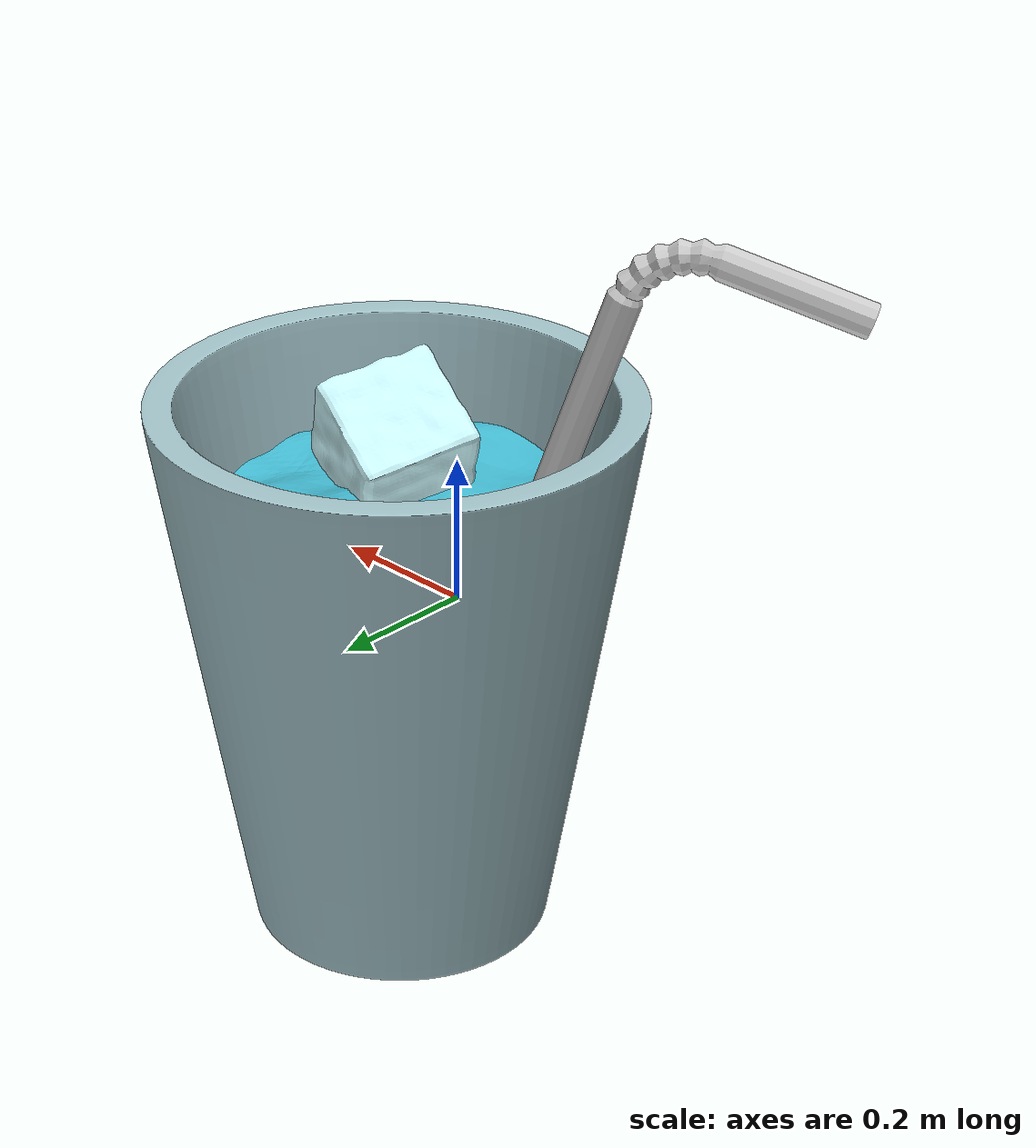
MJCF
<mujoco model="glass_of_water">
  <asset>
  <texture file="visual/ceramic.png" name="tex-glass_of_water" type="2d" />
  <material name="glass_of_water" reflectance="0.5" texrepeat="1 1" texture="tex-glass_of_water" texuniform="false" />
  <mesh file="visual/model_normalized_0.obj" name="model_normalized_0_vis" scale="1.0 1.0 1.0" /><mesh file="visual/model_normalized_1.obj" name="model_normalized_1_vis" scale="1.0 1.0 1.0" /><mesh file="visual/model_normalized_2.obj" name="model_normalized_2_vis" scale="1.0 1.0 1.0" /><mesh file="visual/model_normalized_3.obj" name="model_normalized_3_vis" scale="1.0 1.0 1.0" /><mesh file="visual/model_normalized_4.obj" name="model_normalized_4_vis" scale="1.0 1.0 1.0" /><mesh file="collision/model_normalized_collision_22.obj" name="model_normalized_collision_22._coll" scale="1.0 1.0 1.0" /><mesh file="collision/model_normalized_collision_23.obj" name="model_normalized_collision_23._coll" scale="1.0 1.0 1.0" /><mesh file="collision/model_normalized_collision_21.obj" name="model_normalized_collision_21._coll" scale="1.0 1.0 1.0" /><mesh file="collision/model_normalized_collision_20.obj" name="model_normalized_collision_20._coll" scale="1.0 1.0 1.0" /><mesh file="collision/model_normalized_collision_24.obj" name="model_normalized_collision_24._coll" scale="1.0 1.0 1.0" /><mesh file="collision/model_normalized_collision_30.obj" name="model_normalized_collision_30._coll" scale="1.0 1.0 1.0" /><mesh file="collision/model_normalized_collision_18.obj" name="model_normalized_collision_18._coll" scale="1.0 1.0 1.0" /><mesh file="collision/model_normalized_collision_19.obj" name="model_normalized_collision_19._coll" scale="1.0 1.0 1.0" /><mesh file="collision/model_normalized_collision_31.obj" name="model_normalized_collision_31._coll" scale="1.0 1.0 1.0" /><mesh file="collision/model_normalized_collision_25.obj" name="model_normalized_collision_25._coll" scale="1.0 1.0 1.0" /><mesh file="collision/model_normalized_collision_27.obj" name="model_normalized_collision_27._coll" scale="1.0 1.0 1.0" /><mesh file="collision/model_normalized_collision_26.obj" name="model_normalized_collision_26._coll" scale="1.0 1.0 1.0" /><mesh file="collision/model_normalized_collision_9.obj" name="model_normalized_collision_9._coll" scale="1.0 1.0 1.0" /><mesh file="collision/model_normalized_collision_8.obj" name="model_normalized_collision_8._coll" scale="1.0 1.0 1.0" /><mesh file="collision/model_normalized_collision_6.obj" name="model_normalized_collision_6._coll" scale="1.0 1.0 1.0" /><mesh file="collision/model_normalized_collision_7.obj" name="model_normalized_collision_7._coll" scale="1.0 1.0 1.0" /><mesh file="collision/model_normalized_collision_5.obj" name="model_normalized_collision_5._coll" scale="1.0 1.0 1.0" /><mesh file="collision/model_normalized_collision_4.obj" name="model_normalized_collision_4._coll" scale="1.0 1.0 1.0" /><mesh file="collision/model_normalized_collision_0.obj" name="model_normalized_collision_0._coll" scale="1.0 1.0 1.0" /><mesh file="collision/model_normalized_collision_1.obj" name="model_normalized_collision_1._coll" scale="1.0 1.0 1.0" /><mesh file="collision/model_normalized_collision_3.obj" name="model_normalized_collision_3._coll" scale="1.0 1.0 1.0" /><mesh file="collision/model_normalized_collision_2.obj" name="model_normalized_collision_2._coll" scale="1.0 1.0 1.0" /><mesh file="collision/model_normalized_collision_17.obj" name="model_normalized_collision_17._coll" scale="1.0 1.0 1.0" /><mesh file="collision/model_normalized_collision_16.obj" name="model_normalized_collision_16._coll" scale="1.0 1.0 1.0" /><mesh file="collision/model_normalized_collision_28.obj" name="model_normalized_collision_28._coll" scale="1.0 1.0 1.0" /><mesh file="collision/model_normalized_collision_14.obj" name="model_normalized_collision_14._coll" scale="1.0 1.0 1.0" /><mesh file="collision/model_normalized_collision_15.obj" name="model_normalized_collision_15._coll" scale="1.0 1.0 1.0" /><mesh file="collision/model_normalized_collision_29.obj" name="model_normalized_collision_29._coll" scale="1.0 1.0 1.0" /><mesh file="collision/model_normalized_collision_11.obj" name="model_normalized_collision_11._coll" scale="1.0 1.0 1.0" /><mesh file="collision/model_normalized_collision_10.obj" name="model_normalized_collision_10._coll" scale="1.0 1.0 1.0" /><mesh file="collision/model_normalized_collision_12.obj" name="model_normalized_collision_12._coll" scale="1.0 1.0 1.0" /><mesh file="collision/model_normalized_collision_13.obj" name="model_normalized_collision_13._coll" scale="1.0 1.0 1.0" /><material name="material_0" specular="0.4000000000000001" shininess="0.001" rgba="0.80000000 0.98039216 1.00000000 1.0" /><material name="material_1" specular="0.4000000000000001" shininess="0.001" rgba="0.62745098 0.83137255 0.90588235 1.0" /><material name="material_2" specular="0.4000000000000001" shininess="0.001" rgba="0.80000000 0.80000000 0.80000000 1.0" /><material name="material_3" specular="0.4000000000000001" shininess="0.001" rgba="0.25490196 0.71764706 0.80784314 1.0" /><material name="material_4" specular="0.4000000000000001" shininess="0.001" rgba="0.62745098 0.75686275 0.78039216 1.0" /></asset>
  <worldbody>
    <body>
      <body name="object">
      <geom solimp="0.998 0.998 0.001" solref="0.001 1" density="100" friction="0.95 0.3 0.1" type="mesh" mesh="model_normalized_0_vis" conaffinity="0" contype="0" group="1" material="material_4" /><geom solimp="0.998 0.998 0.001" solref="0.001 1" density="100" friction="0.95 0.3 0.1" type="mesh" mesh="model_normalized_1_vis" conaffinity="0" contype="0" group="1" material="material_3" /><geom solimp="0.998 0.998 0.001" solref="0.001 1" density="100" friction="0.95 0.3 0.1" type="mesh" mesh="model_normalized_2_vis" conaffinity="0" contype="0" group="1" material="material_2" /><geom solimp="0.998 0.998 0.001" solref="0.001 1" density="100" friction="0.95 0.3 0.1" type="mesh" mesh="model_normalized_3_vis" conaffinity="0" contype="0" group="1" material="material_1" /><geom solimp="0.998 0.998 0.001" solref="0.001 1" density="100" friction="0.95 0.3 0.1" type="mesh" mesh="model_normalized_4_vis" conaffinity="0" contype="0" group="1" material="material_0" /><geom solimp="0.998 0.998 0.001" solref="0.001 1" density="100" friction="0.95 0.3 0.1" type="mesh" mesh="model_normalized_collision_22._coll" group="0" rgba="0.8 0.8 0.8 0.0" /><geom solimp="0.998 0.998 0.001" solref="0.001 1" density="100" friction="0.95 0.3 0.1" type="mesh" mesh="model_normalized_collision_23._coll" group="0" rgba="0.8 0.8 0.8 0.0" /><geom solimp="0.998 0.998 0.001" solref="0.001 1" density="100" friction="0.95 0.3 0.1" type="mesh" mesh="model_normalized_collision_21._coll" group="0" rgba="0.8 0.8 0.8 0.0" /><geom solimp="0.998 0.998 0.001" solref="0.001 1" density="100" friction="0.95 0.3 0.1" type="mesh" mesh="model_normalized_collision_20._coll" group="0" rgba="0.8 0.8 0.8 0.0" /><geom solimp="0.998 0.998 0.001" solref="0.001 1" density="100" friction="0.95 0.3 0.1" type="mesh" mesh="model_normalized_collision_24._coll" group="0" rgba="0.8 0.8 0.8 0.0" /><geom solimp="0.998 0.998 0.001" solref="0.001 1" density="100" friction="0.95 0.3 0.1" type="mesh" mesh="model_normalized_collision_30._coll" group="0" rgba="0.8 0.8 0.8 0.0" /><geom solimp="0.998 0.998 0.001" solref="0.001 1" density="100" friction="0.95 0.3 0.1" type="mesh" mesh="model_normalized_collision_18._coll" group="0" rgba="0.8 0.8 0.8 0.0" /><geom solimp="0.998 0.998 0.001" solref="0.001 1" density="100" friction="0.95 0.3 0.1" type="mesh" mesh="model_normalized_collision_19._coll" group="0" rgba="0.8 0.8 0.8 0.0" /><geom solimp="0.998 0.998 0.001" solref="0.001 1" density="100" friction="0.95 0.3 0.1" type="mesh" mesh="model_normalized_collision_31._coll" group="0" rgba="0.8 0.8 0.8 0.0" /><geom solimp="0.998 0.998 0.001" solref="0.001 1" density="100" friction="0.95 0.3 0.1" type="mesh" mesh="model_normalized_collision_25._coll" group="0" rgba="0.8 0.8 0.8 0.0" /><geom solimp="0.998 0.998 0.001" solref="0.001 1" density="100" friction="0.95 0.3 0.1" type="mesh" mesh="model_normalized_collision_27._coll" group="0" rgba="0.8 0.8 0.8 0.0" /><geom solimp="0.998 0.998 0.001" solref="0.001 1" density="100" friction="0.95 0.3 0.1" type="mesh" mesh="model_normalized_collision_26._coll" group="0" rgba="0.8 0.8 0.8 0.0" /><geom solimp="0.998 0.998 0.001" solref="0.001 1" density="100" friction="0.95 0.3 0.1" type="mesh" mesh="model_normalized_collision_9._coll" group="0" rgba="0.8 0.8 0.8 0.0" /><geom solimp="0.998 0.998 0.001" solref="0.001 1" density="100" friction="0.95 0.3 0.1" type="mesh" mesh="model_normalized_collision_8._coll" group="0" rgba="0.8 0.8 0.8 0.0" /><geom solimp="0.998 0.998 0.001" solref="0.001 1" density="100" friction="0.95 0.3 0.1" type="mesh" mesh="model_normalized_collision_6._coll" group="0" rgba="0.8 0.8 0.8 0.0" /><geom solimp="0.998 0.998 0.001" solref="0.001 1" density="100" friction="0.95 0.3 0.1" type="mesh" mesh="model_normalized_collision_7._coll" group="0" rgba="0.8 0.8 0.8 0.0" /><geom solimp="0.998 0.998 0.001" solref="0.001 1" density="100" friction="0.95 0.3 0.1" type="mesh" mesh="model_normalized_collision_5._coll" group="0" rgba="0.8 0.8 0.8 0.0" /><geom solimp="0.998 0.998 0.001" solref="0.001 1" density="100" friction="0.95 0.3 0.1" type="mesh" mesh="model_normalized_collision_4._coll" group="0" rgba="0.8 0.8 0.8 0.0" /><geom solimp="0.998 0.998 0.001" solref="0.001 1" density="100" friction="0.95 0.3 0.1" type="mesh" mesh="model_normalized_collision_0._coll" group="0" rgba="0.8 0.8 0.8 0.0" /><geom solimp="0.998 0.998 0.001" solref="0.001 1" density="100" friction="0.95 0.3 0.1" type="mesh" mesh="model_normalized_collision_1._coll" group="0" rgba="0.8 0.8 0.8 0.0" /><geom solimp="0.998 0.998 0.001" solref="0.001 1" density="100" friction="0.95 0.3 0.1" type="mesh" mesh="model_normalized_collision_3._coll" group="0" rgba="0.8 0.8 0.8 0.0" /><geom solimp="0.998 0.998 0.001" solref="0.001 1" density="100" friction="0.95 0.3 0.1" type="mesh" mesh="model_normalized_collision_2._coll" group="0" rgba="0.8 0.8 0.8 0.0" /><geom solimp="0.998 0.998 0.001" solref="0.001 1" density="100" friction="0.95 0.3 0.1" type="mesh" mesh="model_normalized_collision_17._coll" group="0" rgba="0.8 0.8 0.8 0.0" /><geom solimp="0.998 0.998 0.001" solref="0.001 1" density="100" friction="0.95 0.3 0.1" type="mesh" mesh="model_normalized_collision_16._coll" group="0" rgba="0.8 0.8 0.8 0.0" /><geom solimp="0.998 0.998 0.001" solref="0.001 1" density="100" friction="0.95 0.3 0.1" type="mesh" mesh="model_normalized_collision_28._coll" group="0" rgba="0.8 0.8 0.8 0.0" /><geom solimp="0.998 0.998 0.001" solref="0.001 1" density="100" friction="0.95 0.3 0.1" type="mesh" mesh="model_normalized_collision_14._coll" group="0" rgba="0.8 0.8 0.8 0.0" /><geom solimp="0.998 0.998 0.001" solref="0.001 1" density="100" friction="0.95 0.3 0.1" type="mesh" mesh="model_normalized_collision_15._coll" group="0" rgba="0.8 0.8 0.8 0.0" /><geom solimp="0.998 0.998 0.001" solref="0.001 1" density="100" friction="0.95 0.3 0.1" type="mesh" mesh="model_normalized_collision_29._coll" group="0" rgba="0.8 0.8 0.8 0.0" /><geom solimp="0.998 0.998 0.001" solref="0.001 1" density="100" friction="0.95 0.3 0.1" type="mesh" mesh="model_normalized_collision_11._coll" group="0" rgba="0.8 0.8 0.8 0.0" /><geom solimp="0.998 0.998 0.001" solref="0.001 1" density="100" friction="0.95 0.3 0.1" type="mesh" mesh="model_normalized_collision_10._coll" group="0" rgba="0.8 0.8 0.8 0.0" /><geom solimp="0.998 0.998 0.001" solref="0.001 1" density="100" friction="0.95 0.3 0.1" type="mesh" mesh="model_normalized_collision_12._coll" group="0" rgba="0.8 0.8 0.8 0.0" /><geom solimp="0.998 0.998 0.001" solref="0.001 1" density="100" friction="0.95 0.3 0.1" type="mesh" mesh="model_normalized_collision_13._coll" group="0" rgba="0.8 0.8 0.8 0.0" /></body>
      <site rgba="0 0 0 0" size="0.005" pos="0.002051954506713638 -0.0020743749487306395 -0.5075757573499755" name="bottom_site" />
      <site rgba="0 0 0 0" size="0.005" pos="0.002051954506713638 -0.0020743749487306395 0.5075757325940657" name="top_site" />
      <site rgba="0 0 0 0" size="0.005" pos="0.4187186107983307 0.3615619796527092 -1.2377954883291409e-08" name="horizontal_radius_site" />
    </body>
  </worldbody>
</mujoco>
